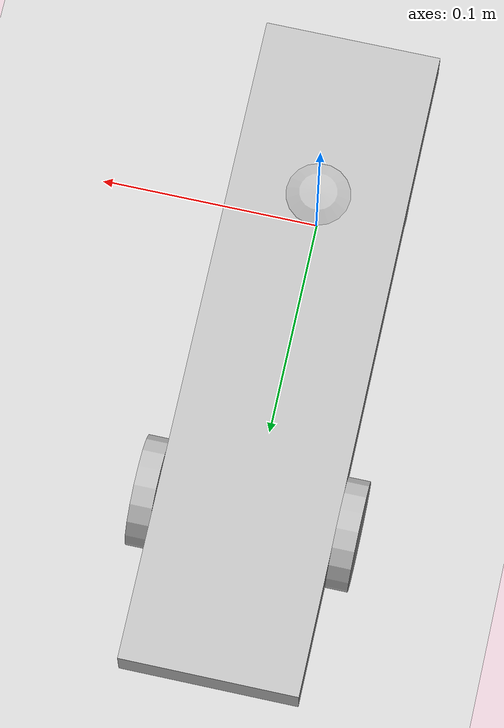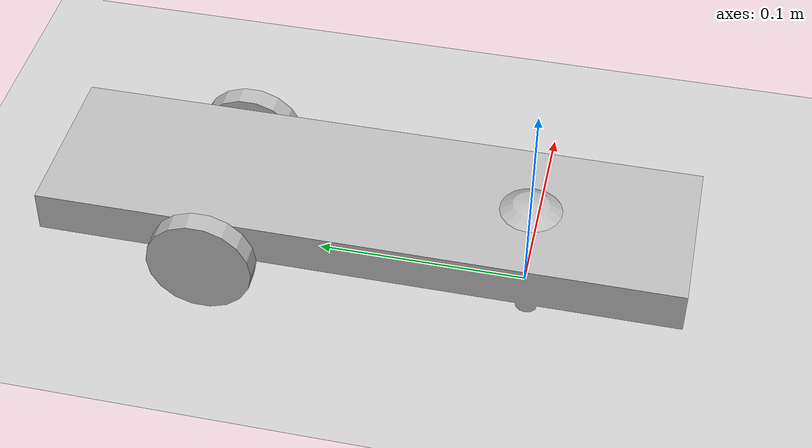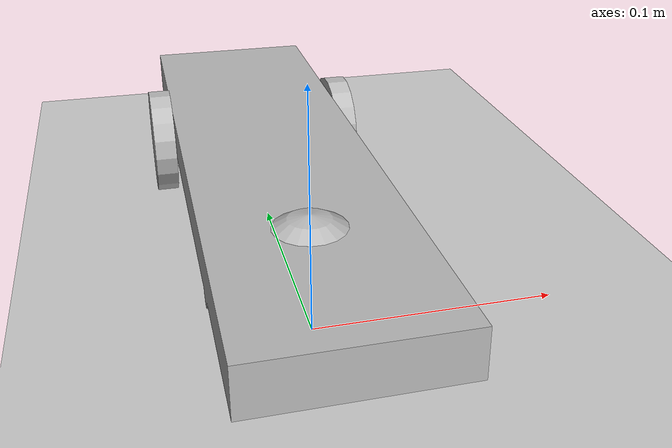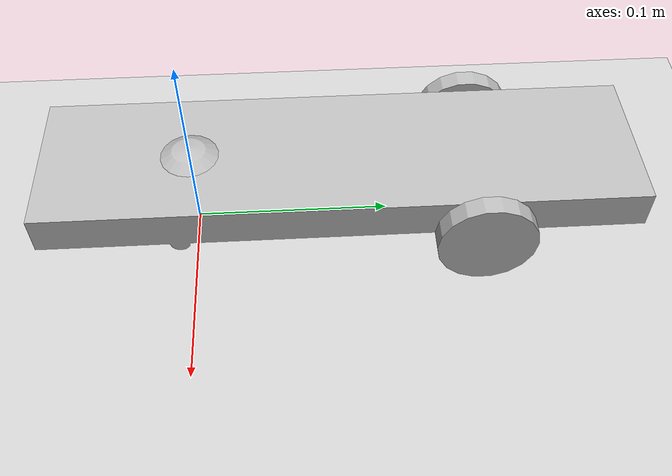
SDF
<?xml version="1.0"?>
<sdf version="1.11">
  <world name="car_world">
    <physics name="1ms" type="ignored">
      <max_step_size>0.001</max_step_size>
      <real_time_factor>1.0</real_time_factor>
    </physics>
    <plugin
      filename="gz-sim-physics-system"
      name="gz::sim::systems::Physics">
    </plugin>
    <plugin
      filename="gz-sim-user-commands-system"
      name="gz::sim::systems::UserCommands">
    </plugin>
    <plugin
      filename="gz-sim-scene-broadcaster-system"
      name="gz::sim::systems::SceneBroadcaster">
    </plugin>

    <light type="directional" name="sun">
      <cast_shadows>true</cast_shadows>
      <pose>0 0 10 0 0 0</pose>
      <diffuse>0.8 0.8 0.8 1</diffuse>
      <specular>0.2 0.2 0.2 1</specular>
      <attenuation>
        <range>1000</range>
        <constant>0.9</constant>
        <linear>0.01</linear>
        <quadratic>0.001</quadratic>
      </attenuation>
      <direction>-0.5 0.1 -0.9</direction>
    </light>

    <model name="ground_plane">
      <static>true</static>
      <link name="link">
        <collision name="collision">
          <geometry>
            <plane>
              <normal>0 0 1</normal>
            </plane>
          </geometry>
        </collision>
        <visual name="visual">
          <geometry>
            <plane>
              <normal>0 0 1</normal>
              <size>100 100</size>
            </plane>
          </geometry>
          <material>
            <ambient>0.8 0.8 0.8 1</ambient>
            <diffuse>0.8 0.8 0.8 1</diffuse>
            <specular>0.8 0.8 0.8 1</specular>
          </material>
        </visual>
      </link>
    </model>

    <include>
      <name>robot</name>
      <plugin
        filename="gz-sim-diff-drive-system"
        name="gz::sim::systems::DiffDrive">
        <left_joint>revolute_1</left_joint>
        <right_joint>revolute_2</right_joint>
        <wheel_separation>0.08</wheel_separation>
        <wheel_radius>0.025</wheel_radius>
        <odom_publish_frequency>1</odom_publish_frequency>
        <topic>cmd_vel</topic>
      </plugin>
      <uri>model://car_robot</uri>
    </include>
  </world>
</sdf>

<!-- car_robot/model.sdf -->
<sdf version="1.11">
  <model name="ros_urdf_export_vehicle_v1">
    <link name="base_link">
      <inertial>
        <mass>0.0001</mass>
        <inertia>
          <ixx>1e-09</ixx>
          <ixy>0</ixy>
          <ixz>0</ixz>
          <iyy>1e-09</iyy>
          <iyz>0</iyz>
          <izz>1e-09</izz>
        </inertia>
      </inertial>
    </link>
    <link name="castor_wheel_1">
      <inertial>
        <pose>0.0 0.0 0.025 0.0 -0.0 0.0</pose>
        <mass>0.5137812985558307</mass>
        <inertia>
          <ixx>0.00012844532463895768</ixx>
          <ixy>-4.4622083805734286e-20</ixy>
          <ixz>0.0</ixz>
          <iyy>0.00012844532463895768</iyy>
          <iyz>0.0</iyz>
          <izz>0.00012844532463895784</izz>
        </inertia>
      </inertial>
      <visual name="castor_wheel_1__castor_wheel_visual">
        <geometry>
          <mesh>
            <scale>0.01 0.01 0.01</scale>
            <uri>meshes/castor_wheel_1/castor_wheel_visual.obj</uri>
          </mesh>
        </geometry>
      </visual>
      <collision name="castor_wheel_1__castor_wheel_collision">
        <pose relative_to="__model__">0.0 0.0 0.025 -0.0 -1.5707963267948966 0</pose>
        <geometry>
          <sphere>
            <radius>0.025</radius>
          </sphere>
        </geometry>
      </collision>
    </link>
    <link name="chassis_1">
      <pose relative_to="__model__">0.0 -0.005 0.0 0.0 -0.0 0.0</pose>
      <inertial>
        <pose>0.0 0.07993539581979103 0.0348433727739177 0.0 -0.0 0.0</pose>
        <mass>3.8173230046613593</mass>
        <inertia>
          <ixx>0.02867180756842933</ixx>
          <ixy>-2.8558133635669943e-18</ixy>
          <ixz>0.0</ixz>
          <iyy>0.0021687458581609777</iyy>
          <iyz>-2.9508569393942724e-06</iyz>
          <izz>0.03057487291524046</izz>
        </inertia>
      </inertial>
      <visual name="chassis_1__chassis_visual">
        <geometry>
          <mesh>
            <scale>0.01 0.01 0.01</scale>
            <uri>meshes/chassis_1/chassis_visual.obj</uri>
          </mesh>
        </geometry>
      </visual>
      <collision name="chassis_1__chassis_collision">
        <pose relative_to="__model__">0.0 0.07499999999999943 0.0325 -0.0 -1.5707963267948966 0</pose>
        <geometry>
          <box>
            <size>0.025 0.3 0.08</size>
          </box>
        </geometry>
      </collision>
    </link>
    <link name="r_wheel_1">
      <pose relative_to="__model__">0.0 -0.005 0.0 0.0 -0.0 0.0</pose>
      <inertial>
        <pose>-0.045 0.15000000000000002 0.025 0.0 -0.0 0.0</pose>
        <mass>3</mass>
        <inertia>
          <ixx>4.8166996739608045e-05</ixx>
          <ixy>0.0</ixy>
          <ixz>2.710505431213761e-20</ixz>
          <iyy>2.536795161619317e-05</iyy>
          <iyz>1.0842021724855044e-19</iyz>
          <izz>2.5367951616194363e-05</izz>
        </inertia>
      </inertial>
      <visual name="r_wheel_1__r_wheel_visual">
        <geometry>
          <mesh>
            <scale>0.01 0.01 0.01</scale>
            <uri>meshes/r_wheel_1/r_wheel_visual.obj</uri>
          </mesh>
        </geometry>
      </visual>
      <collision name="r_wheel_1__r_wheel_collision">
        <pose relative_to="__model__">-0.045 0.145 0.025 -0.0 -1.5707963267948966 0</pose>
        <geometry>
          <cylinder>
            <radius>0.025</radius>
            <length>0.01</length>
          </cylinder>
        </geometry>
      </collision>
    </link>
    <link name="l_wheel_1">
      <pose relative_to="__model__">0.0 -0.005 0.0 0.0 -0.0 0.0</pose>
      <inertial>
        <pose>0.04500000000000001 0.15000000000000002 0.025 0.0 -0.0 0.0</pose>
        <mass>3</mass>
        <inertia>
          <ixx>4.8166996739608045e-05</ixx>
          <ixy>6.505213034913027e-19</ixy>
          <ixz>2.710505431213761e-20</ixz>
          <iyy>2.53679516161929e-05</iyy>
          <iyz>1.0842021724855044e-19</iyz>
          <izz>2.536795161619393e-05</izz>
        </inertia>
      </inertial>
      <visual name="l_wheel_1__l_wheel_visual">
        <geometry>
          <mesh>
            <scale>0.01 0.01 0.01</scale>
            <uri>meshes/l_wheel_1/l_wheel_visual.obj</uri>
          </mesh>
        </geometry>
      </visual>
      <collision name="l_wheel_1__l_wheel_collision">
        <pose relative_to="__model__">0.045 0.145 0.025 -0.0 -1.5707963267948966 0</pose>
        <geometry>
          <cylinder>
            <radius>0.025</radius>
            <length>0.01</length>
          </cylinder>
        </geometry>
      </collision>
    </link>
    <joint name="revolute_1" type="revolute">
      <pose relative_to="__model__">0.04 0.145 0.025 0.0 -0.0 0.0</pose>
      <parent>chassis_1</parent>
      <child>l_wheel_1</child>
      <axis>
        <xyz expressed_in="__model__">-1.0 0.0 0.0</xyz>
      </axis>
    </joint>
    <joint name="revolute_2" type="revolute">
      <pose relative_to="__model__">-0.04 0.145 0.025 0.0 -0.0 0.0</pose>
      <parent>chassis_1</parent>
      <child>r_wheel_1</child>
      <axis>
        <xyz expressed_in="__model__">1.0 0.0 0.0</xyz>
      </axis>
    </joint>
    <joint name="ball_3" type="ball">
      <pose relative_to="__model__">0.0 0.0 0.025 0.0 -0.0 0.0</pose>
      <parent>chassis_1</parent>
      <child>castor_wheel_1</child>
      <axis />
    </joint>
    <joint name="base_link_joint" type="fixed">
      <parent>base_link</parent>
      <child>chassis_1</child>
      <axis />
    </joint>
  </model>
</sdf>
